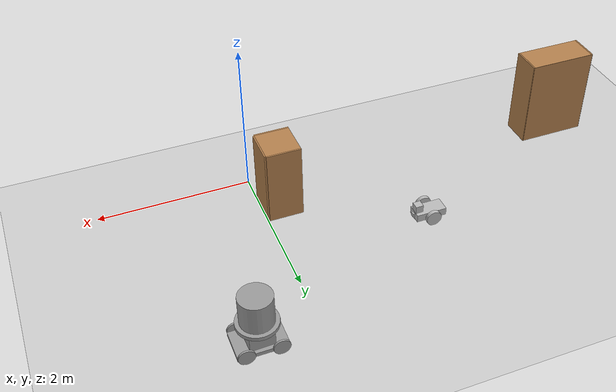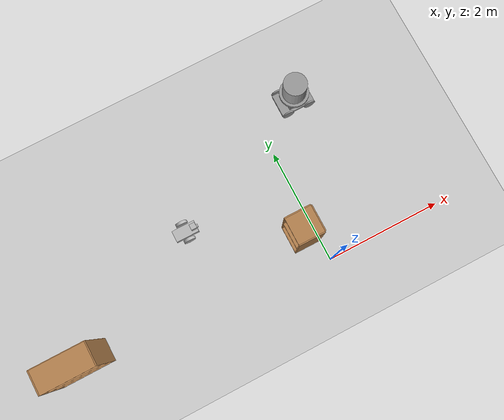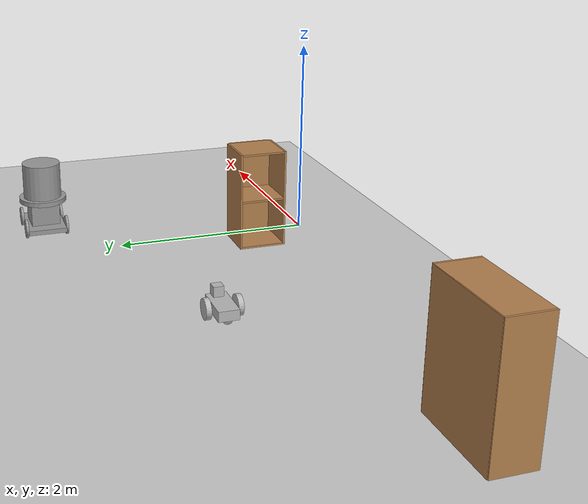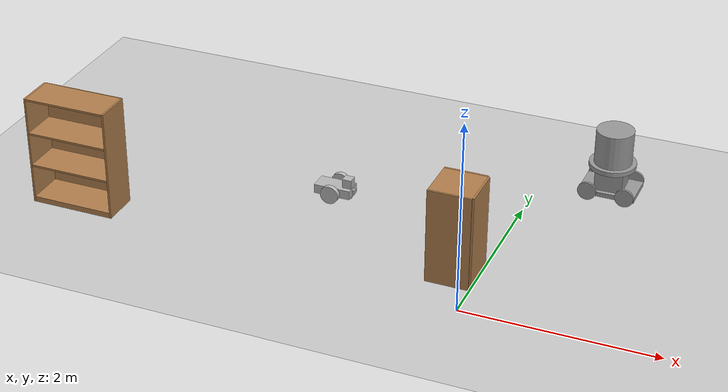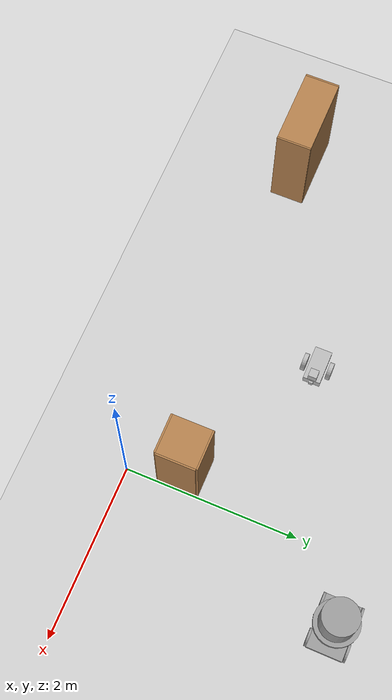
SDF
<sdf version="1.6">
 <world name="default">
  <model name="ground_plane">
   <static>1</static>
   <link name="link">
    <collision name="collision">
     <geometry><plane><normal>0 0 1</normal><size>100 100</size></plane></geometry>
     <surface>
      <contact><collide_bitmask>65535</collide_bitmask></contact>
      <friction><ode><mu>100</mu><mu2>50</mu2></ode></friction>
     </surface>
    </collision>
    <visual name="visual">
     <cast_shadows>0</cast_shadows>
     <geometry><plane><normal>0 0 1</normal><size>100 100</size></plane></geometry>
     <material>
      <script><uri>file://media/materials/scripts/gazebo.material</uri><name>Gazebo/Grey</name></script>
     </material>
    </visual>
   </link>
  </model>
  <model name="4x4_robot_0">
   <link name="link_0">
    <pose>-0 0 -0.02 0 -0 0</pose>
    <inertial>
     <mass>1</mass>
     <inertia>
      <ixx>0.166667</ixx>
      <ixy>0</ixy>
      <ixz>0</ixz>
      <iyy>0.166667</iyy>
      <iyz>0</iyz>
      <izz>0.166667</izz>
     </inertia>
    </inertial>
    <visual name="visual">
     <geometry><box><size>0.6 0.4 0.05</size></box></geometry>
     <material>
      <lighting>1</lighting>
      <script><uri>file://media/materials/scripts/gazebo.material</uri><name>Gazebo/Grey</name></script>
      <shader type="pixel"><normal_map>__default__</normal_map></shader>
      <ambient>0.3 0.3 0.3 1</ambient>
      <diffuse>0.7 0.7 0.7 1</diffuse>
      <specular>0.01 0.01 0.01 1</specular>
      <emissive>0 0 0 1</emissive>
     </material>
    </visual>
    <collision name="collision">
     <geometry><box><size>0.6 0.4 0.05</size></box></geometry>
     <surface>
      <friction>
       <ode><mu>1</mu><mu2>1</mu2><fdir1>0 0 0</fdir1><slip1>0</slip1><slip2>0</slip2></ode>
       <torsional>
        <coefficient>1</coefficient>
        <patch_radius>0</patch_radius>
        <surface_radius>0</surface_radius>
        <use_patch_radius>1</use_patch_radius>
        <ode><slip>0</slip></ode>
       </torsional>
      </friction>
      <bounce><restitution_coefficient>0</restitution_coefficient><threshold>1e+06</threshold></bounce>
      <contact>
       <collide_without_contact>0</collide_without_contact>
       <collide_without_contact_bitmask>1</collide_without_contact_bitmask>
       <collide_bitmask>1</collide_bitmask>
       <ode>
        <soft_cfm>0</soft_cfm>
        <soft_erp>0.2</soft_erp>
        <kp>1e+13</kp>
        <kd>1</kd>
        <max_vel>0.01</max_vel>
        <min_depth>0</min_depth>
       </ode>
       <bullet>
        <split_impulse>1</split_impulse>
        <split_impulse_penetration_threshold>-0.01</split_impulse_penetration_threshold>
        <soft_cfm>0</soft_cfm>
        <soft_erp>0.2</soft_erp>
        <kp>1e+13</kp>
        <kd>1</kd>
       </bullet>
      </contact>
     </surface>
    </collision>
   </link>
   <link name="link_0_0">
    <pose>9.4e-05 1e-06 0.104673 2.5e-05 0.001086 0.029379</pose>
    <inertial>
     <mass>1</mass>
     <inertia>
      <ixx>0.166667</ixx>
      <ixy>0</ixy>
      <ixz>0</ixz>
      <iyy>0.166667</iyy>
      <iyz>0</iyz>
      <izz>0.166667</izz>
     </inertia>
    </inertial>
    <visual name="visual">
     <geometry><box><size>0.3 0.3 0.3</size></box></geometry>
     <material>
      <lighting>1</lighting>
      <script><uri>file://media/materials/scripts/gazebo.material</uri><name>Gazebo/Grey</name></script>
      <shader type="pixel"><normal_map>__default__</normal_map></shader>
      <ambient>0.3 0.3 0.3 1</ambient>
      <diffuse>0.7 0.7 0.7 1</diffuse>
      <specular>0.01 0.01 0.01 1</specular>
      <emissive>0 0 0 1</emissive>
     </material>
    </visual>
    <collision name="collision">
     <geometry><box><size>0.3 0.3 0.3</size></box></geometry>
     <surface>
      <friction>
       <ode><mu>1</mu><mu2>1</mu2><fdir1>0 0 0</fdir1><slip1>0</slip1><slip2>0</slip2></ode>
       <torsional>
        <coefficient>1</coefficient>
        <patch_radius>0</patch_radius>
        <surface_radius>0</surface_radius>
        <use_patch_radius>1</use_patch_radius>
        <ode><slip>0</slip></ode>
       </torsional>
      </friction>
      <bounce><restitution_coefficient>0</restitution_coefficient><threshold>1e+06</threshold></bounce>
      <contact>
       <collide_without_contact>0</collide_without_contact>
       <collide_without_contact_bitmask>1</collide_without_contact_bitmask>
       <collide_bitmask>1</collide_bitmask>
       <ode>
        <soft_cfm>0</soft_cfm>
        <soft_erp>0.2</soft_erp>
        <kp>1e+13</kp>
        <kd>1</kd>
        <max_vel>0.01</max_vel>
        <min_depth>0</min_depth>
       </ode>
       <bullet>
        <split_impulse>1</split_impulse>
        <split_impulse_penetration_threshold>-0.01</split_impulse_penetration_threshold>
        <soft_cfm>0</soft_cfm>
        <soft_erp>0.2</soft_erp>
        <kp>1e+13</kp>
        <kd>1</kd>
       </bullet>
      </contact>
     </surface>
    </collision>
   </link>
   <link name="link_1">
    <pose>0.2 0.2125 0.005 1.5708 -0 0</pose>
    <inertial>
     <mass>1</mass>
     <inertia><ixx>0.145833</ixx><ixy>0</ixy><ixz>0</ixz><iyy>0.145833</iyy><iyz>0</iyz><izz>0.125</izz></inertia>
    </inertial>
    <visual name="visual">
     <geometry><cylinder><radius>0.1</radius><length>0.025</length></cylinder></geometry>
     <material>
      <lighting>1</lighting>
      <script><uri>file://media/materials/scripts/gazebo.material</uri><name>Gazebo/Grey</name></script>
      <shader type="pixel"><normal_map>__default__</normal_map></shader>
      <ambient>0.3 0.3 0.3 1</ambient>
      <diffuse>0.7 0.7 0.7 1</diffuse>
      <specular>0.01 0.01 0.01 1</specular>
      <emissive>0 0 0 1</emissive>
     </material>
    </visual>
    <collision name="collision">
     <geometry><cylinder><radius>0.1</radius><length>0.025</length></cylinder></geometry>
     <surface>
      <friction>
       <ode><mu>1</mu><mu2>1</mu2><fdir1>0 0 0</fdir1><slip1>0</slip1><slip2>0</slip2></ode>
       <torsional>
        <coefficient>1</coefficient>
        <patch_radius>0</patch_radius>
        <surface_radius>0</surface_radius>
        <use_patch_radius>1</use_patch_radius>
        <ode><slip>0</slip></ode>
       </torsional>
      </friction>
      <bounce><restitution_coefficient>0</restitution_coefficient><threshold>1e+06</threshold></bounce>
      <contact>
       <collide_without_contact>0</collide_without_contact>
       <collide_without_contact_bitmask>1</collide_without_contact_bitmask>
       <collide_bitmask>1</collide_bitmask>
       <ode>
        <soft_cfm>0</soft_cfm>
        <soft_erp>0.2</soft_erp>
        <kp>1e+13</kp>
        <kd>1</kd>
        <max_vel>0.01</max_vel>
        <min_depth>0</min_depth>
       </ode>
       <bullet>
        <split_impulse>1</split_impulse>
        <split_impulse_penetration_threshold>-0.01</split_impulse_penetration_threshold>
        <soft_cfm>0</soft_cfm>
        <soft_erp>0.2</soft_erp>
        <kp>1e+13</kp>
        <kd>1</kd>
       </bullet>
      </contact>
     </surface>
    </collision>
   </link>
   <link name="link_1_0">
    <pose>0.000268 2e-06 0.264673 2.5e-05 0.001086 0.029379</pose>
    <inertial>
     <mass>1</mass>
     <inertia><ixx>0.145833</ixx><ixy>0</ixy><ixz>0</ixz><iyy>0.145833</iyy><iyz>0</iyz><izz>0.125</izz></inertia>
    </inertial>
    <visual name="visual">
     <geometry><cylinder><radius>0.25</radius><length>0.05</length></cylinder></geometry>
     <material>
      <lighting>1</lighting>
      <script><uri>file://media/materials/scripts/gazebo.material</uri><name>Gazebo/Grey</name></script>
      <shader type="pixel"><normal_map>__default__</normal_map></shader>
      <ambient>0.3 0.3 0.3 1</ambient>
      <diffuse>0.7 0.7 0.7 1</diffuse>
      <specular>0.01 0.01 0.01 1</specular>
      <emissive>0 0 0 1</emissive>
     </material>
    </visual>
    <collision name="collision">
     <geometry><cylinder><radius>0.25</radius><length>0.05</length></cylinder></geometry>
     <surface>
      <friction>
       <ode><mu>1</mu><mu2>1</mu2><fdir1>0 0 0</fdir1><slip1>0</slip1><slip2>0</slip2></ode>
       <torsional>
        <coefficient>1</coefficient>
        <patch_radius>0</patch_radius>
        <surface_radius>0</surface_radius>
        <use_patch_radius>1</use_patch_radius>
        <ode><slip>0</slip></ode>
       </torsional>
      </friction>
      <bounce><restitution_coefficient>0</restitution_coefficient><threshold>1e+06</threshold></bounce>
      <contact>
       <collide_without_contact>0</collide_without_contact>
       <collide_without_contact_bitmask>1</collide_without_contact_bitmask>
       <collide_bitmask>1</collide_bitmask>
       <ode>
        <soft_cfm>0</soft_cfm>
        <soft_erp>0.2</soft_erp>
        <kp>1e+13</kp>
        <kd>1</kd>
        <max_vel>0.01</max_vel>
        <min_depth>0</min_depth>
       </ode>
       <bullet>
        <split_impulse>1</split_impulse>
        <split_impulse_penetration_threshold>-0.01</split_impulse_penetration_threshold>
        <soft_cfm>0</soft_cfm>
        <soft_erp>0.2</soft_erp>
        <kp>1e+13</kp>
        <kd>1</kd>
       </bullet>
      </contact>
     </surface>
    </collision>
   </link>
   <link name="link_1_clone">
    <pose>-0.2 -0.2125 0.005 1.5708 -0 0</pose>
    <inertial>
     <mass>1</mass>
     <inertia><ixx>0.145833</ixx><ixy>0</ixy><ixz>0</ixz><iyy>0.145833</iyy><iyz>0</iyz><izz>0.125</izz></inertia>
    </inertial>
    <visual name="visual">
     <geometry><cylinder><radius>0.1</radius><length>0.025</length></cylinder></geometry>
     <material>
      <lighting>1</lighting>
      <script><uri>file://media/materials/scripts/gazebo.material</uri><name>Gazebo/Grey</name></script>
      <shader type="pixel"><normal_map>__default__</normal_map></shader>
      <ambient>0.3 0.3 0.3 1</ambient>
      <diffuse>0.7 0.7 0.7 1</diffuse>
      <specular>0.01 0.01 0.01 1</specular>
      <emissive>0 0 0 1</emissive>
     </material>
    </visual>
    <collision name="collision">
     <geometry><cylinder><radius>0.1</radius><length>0.025</length></cylinder></geometry>
     <surface>
      <friction>
       <ode><mu>1</mu><mu2>1</mu2><fdir1>0 0 0</fdir1><slip1>0</slip1><slip2>0</slip2></ode>
       <torsional>
        <coefficient>1</coefficient>
        <patch_radius>0</patch_radius>
        <surface_radius>0</surface_radius>
        <use_patch_radius>1</use_patch_radius>
        <ode><slip>0</slip></ode>
       </torsional>
      </friction>
      <bounce><restitution_coefficient>0</restitution_coefficient><threshold>1e+06</threshold></bounce>
      <contact>
       <collide_without_contact>0</collide_without_contact>
       <collide_without_contact_bitmask>1</collide_without_contact_bitmask>
       <collide_bitmask>1</collide_bitmask>
       <ode>
        <soft_cfm>0</soft_cfm>
        <soft_erp>0.2</soft_erp>
        <kp>1e+13</kp>
        <kd>1</kd>
        <max_vel>0.01</max_vel>
        <min_depth>0</min_depth>
       </ode>
       <bullet>
        <split_impulse>1</split_impulse>
        <split_impulse_penetration_threshold>-0.01</split_impulse_penetration_threshold>
        <soft_cfm>0</soft_cfm>
        <soft_erp>0.2</soft_erp>
        <kp>1e+13</kp>
        <kd>1</kd>
       </bullet>
      </contact>
     </surface>
    </collision>
   </link>
   <link name="link_1_clone_0">
    <pose>-0.2 0.2125 0.005 1.5708 -0 0</pose>
    <inertial>
     <mass>1</mass>
     <inertia><ixx>0.145833</ixx><ixy>0</ixy><ixz>0</ixz><iyy>0.145833</iyy><iyz>0</iyz><izz>0.125</izz></inertia>
    </inertial>
    <visual name="visual">
     <geometry><cylinder><radius>0.1</radius><length>0.025</length></cylinder></geometry>
     <material>
      <lighting>1</lighting>
      <script><uri>file://media/materials/scripts/gazebo.material</uri><name>Gazebo/Grey</name></script>
      <shader type="pixel"><normal_map>__default__</normal_map></shader>
      <ambient>0.3 0.3 0.3 1</ambient>
      <diffuse>0.7 0.7 0.7 1</diffuse>
      <specular>0.01 0.01 0.01 1</specular>
      <emissive>0 0 0 1</emissive>
     </material>
    </visual>
    <collision name="collision">
     <geometry><cylinder><radius>0.1</radius><length>0.025</length></cylinder></geometry>
     <surface>
      <friction>
       <ode><mu>1</mu><mu2>1</mu2><fdir1>0 0 0</fdir1><slip1>0</slip1><slip2>0</slip2></ode>
       <torsional>
        <coefficient>1</coefficient>
        <patch_radius>0</patch_radius>
        <surface_radius>0</surface_radius>
        <use_patch_radius>1</use_patch_radius>
        <ode><slip>0</slip></ode>
       </torsional>
      </friction>
      <bounce><restitution_coefficient>0</restitution_coefficient><threshold>1e+06</threshold></bounce>
      <contact>
       <collide_without_contact>0</collide_without_contact>
       <collide_without_contact_bitmask>1</collide_without_contact_bitmask>
       <collide_bitmask>1</collide_bitmask>
       <ode>
        <soft_cfm>0</soft_cfm>
        <soft_erp>0.2</soft_erp>
        <kp>1e+13</kp>
        <kd>1</kd>
        <max_vel>0.01</max_vel>
        <min_depth>0</min_depth>
       </ode>
       <bullet>
        <split_impulse>1</split_impulse>
        <split_impulse_penetration_threshold>-0.01</split_impulse_penetration_threshold>
        <soft_cfm>0</soft_cfm>
        <soft_erp>0.2</soft_erp>
        <kp>1e+13</kp>
        <kd>1</kd>
       </bullet>
      </contact>
     </surface>
    </collision>
   </link>
   <link name="link_1_clone_1">
    <pose>0.2 -0.2125 0.005 1.5708 -0 0</pose>
    <inertial>
     <mass>1</mass>
     <inertia><ixx>0.145833</ixx><ixy>0</ixy><ixz>0</ixz><iyy>0.145833</iyy><iyz>0</iyz><izz>0.125</izz></inertia>
    </inertial>
    <visual name="visual">
     <geometry><cylinder><radius>0.1</radius><length>0.025</length></cylinder></geometry>
     <material>
      <lighting>1</lighting>
      <script><uri>file://media/materials/scripts/gazebo.material</uri><name>Gazebo/Grey</name></script>
      <shader type="pixel"><normal_map>__default__</normal_map></shader>
      <ambient>0.3 0.3 0.3 1</ambient>
      <diffuse>0.7 0.7 0.7 1</diffuse>
      <specular>0.01 0.01 0.01 1</specular>
      <emissive>0 0 0 1</emissive>
     </material>
    </visual>
    <collision name="collision">
     <geometry><cylinder><radius>0.1</radius><length>0.025</length></cylinder></geometry>
     <surface>
      <friction>
       <ode><mu>1</mu><mu2>1</mu2><fdir1>0 0 0</fdir1><slip1>0</slip1><slip2>0</slip2></ode>
       <torsional>
        <coefficient>1</coefficient>
        <patch_radius>0</patch_radius>
        <surface_radius>0</surface_radius>
        <use_patch_radius>1</use_patch_radius>
        <ode><slip>0</slip></ode>
       </torsional>
      </friction>
      <bounce><restitution_coefficient>0</restitution_coefficient><threshold>1e+06</threshold></bounce>
      <contact>
       <collide_without_contact>0</collide_without_contact>
       <collide_without_contact_bitmask>1</collide_without_contact_bitmask>
       <collide_bitmask>1</collide_bitmask>
       <ode>
        <soft_cfm>0</soft_cfm>
        <soft_erp>0.2</soft_erp>
        <kp>1e+13</kp>
        <kd>1</kd>
        <max_vel>0.01</max_vel>
        <min_depth>0</min_depth>
       </ode>
       <bullet>
        <split_impulse>1</split_impulse>
        <split_impulse_penetration_threshold>-0.01</split_impulse_penetration_threshold>
        <soft_cfm>0</soft_cfm>
        <soft_erp>0.2</soft_erp>
        <kp>1e+13</kp>
        <kd>1</kd>
       </bullet>
      </contact>
     </surface>
    </collision>
   </link>
   <link name="link_2">
    <pose>0.000485 4e-06 0.464673 2.5e-05 0.001086 0.029379</pose>
    <inertial>
     <mass>1</mass>
     <inertia><ixx>0.145833</ixx><ixy>0</ixy><ixz>0</ixz><iyy>0.145833</iyy><iyz>0</iyz><izz>0.125</izz></inertia>
    </inertial>
    <visual name="visual">
     <geometry><cylinder><radius>0.2</radius><length>0.4</length></cylinder></geometry>
     <material>
      <lighting>1</lighting>
      <script><uri>file://media/materials/scripts/gazebo.material</uri><name>Gazebo/Grey</name></script>
      <shader type="pixel"><normal_map>__default__</normal_map></shader>
      <ambient>0.3 0.3 0.3 1</ambient>
      <diffuse>0.7 0.7 0.7 1</diffuse>
      <specular>0.01 0.01 0.01 1</specular>
      <emissive>0 0 0 1</emissive>
     </material>
    </visual>
    <collision name="collision">
     <geometry><cylinder><radius>0.2</radius><length>0.4</length></cylinder></geometry>
     <surface>
      <friction>
       <ode><mu>1</mu><mu2>1</mu2><fdir1>0 0 0</fdir1><slip1>0</slip1><slip2>0</slip2></ode>
       <torsional>
        <coefficient>1</coefficient>
        <patch_radius>0</patch_radius>
        <surface_radius>0</surface_radius>
        <use_patch_radius>1</use_patch_radius>
        <ode><slip>0</slip></ode>
       </torsional>
      </friction>
      <bounce><restitution_coefficient>0</restitution_coefficient><threshold>1e+06</threshold></bounce>
      <contact>
       <collide_without_contact>0</collide_without_contact>
       <collide_without_contact_bitmask>1</collide_without_contact_bitmask>
       <collide_bitmask>1</collide_bitmask>
       <ode>
        <soft_cfm>0</soft_cfm>
        <soft_erp>0.2</soft_erp>
        <kp>1e+13</kp>
        <kd>1</kd>
        <max_vel>0.01</max_vel>
        <min_depth>0</min_depth>
       </ode>
       <bullet>
        <split_impulse>1</split_impulse>
        <split_impulse_penetration_threshold>-0.01</split_impulse_penetration_threshold>
        <soft_cfm>0</soft_cfm>
        <soft_erp>0.2</soft_erp>
        <kp>1e+13</kp>
        <kd>1</kd>
       </bullet>
      </contact>
     </surface>
    </collision>
   </link>
   <joint name="link_0_0_JOINT_1" type="fixed">
    <parent>link_0_0</parent>
    <child>link_1_0</child>
    <physics>
     <ode><limit><cfm>0</cfm><erp>0.2</erp></limit><suspension><cfm>0</cfm><erp>0.2</erp></suspension></ode>
    </physics>
   </joint>
   <joint name="link_0_JOINT_0_0" type="fixed">
    <parent>link_0</parent>
    <child>link_0_0</child>
    <physics>
     <ode><limit><cfm>0</cfm><erp>0.2</erp></limit><suspension><cfm>0</cfm><erp>0.2</erp></suspension></ode>
    </physics>
   </joint>
   <joint name="link_0_JOINT_0" type="revolute">
    <parent>link_0</parent>
    <child>link_1_clone</child>
    <axis>
     <xyz>0 0 1</xyz>
     <use_parent_model_frame>0</use_parent_model_frame>
     <limit>
      <lower>-1.79769e+308</lower>
      <upper>1.79769e+308</upper>
      <effort>-1</effort>
      <velocity>-1</velocity>
     </limit>
     <dynamics>
      <spring_reference>0</spring_reference>
      <spring_stiffness>0</spring_stiffness>
      <damping>0</damping>
      <friction>0</friction>
     </dynamics>
    </axis>
    <physics>
     <ode><limit><cfm>0</cfm><erp>0.2</erp></limit><suspension><cfm>0</cfm><erp>0.2</erp></suspension></ode>
    </physics>
   </joint>
   <joint name="link_0_JOINT_1" type="revolute">
    <parent>link_0</parent>
    <child>link_1_clone_1</child>
    <axis>
     <xyz>0 0 1</xyz>
     <use_parent_model_frame>0</use_parent_model_frame>
     <limit>
      <lower>-1.79769e+308</lower>
      <upper>1.79769e+308</upper>
      <effort>-1</effort>
      <velocity>-1</velocity>
     </limit>
     <dynamics>
      <spring_reference>0</spring_reference>
      <spring_stiffness>0</spring_stiffness>
      <damping>0</damping>
      <friction>0</friction>
     </dynamics>
    </axis>
    <physics>
     <ode><limit><cfm>0</cfm><erp>0.2</erp></limit><suspension><cfm>0</cfm><erp>0.2</erp></suspension></ode>
    </physics>
   </joint>
   <joint name="link_0_JOINT_2" type="revolute">
    <parent>link_0</parent>
    <child>link_1_clone_0</child>
    <axis>
     <xyz>0 0 1</xyz>
     <use_parent_model_frame>0</use_parent_model_frame>
     <limit>
      <lower>-1.79769e+308</lower>
      <upper>1.79769e+308</upper>
      <effort>-1</effort>
      <velocity>-1</velocity>
     </limit>
     <dynamics>
      <spring_reference>0</spring_reference>
      <spring_stiffness>0</spring_stiffness>
      <damping>0</damping>
      <friction>0</friction>
     </dynamics>
    </axis>
    <physics>
     <ode><limit><cfm>0</cfm><erp>0.2</erp></limit><suspension><cfm>0</cfm><erp>0.2</erp></suspension></ode>
    </physics>
   </joint>
   <joint name="link_0_JOINT_7" type="revolute">
    <parent>link_0</parent>
    <child>link_1</child>
    <pose>0 0 0 0 -0.21 0</pose>
    <axis>
     <xyz>0 0 1</xyz>
     <use_parent_model_frame>0</use_parent_model_frame>
     <limit>
      <lower>-1.79769e+308</lower>
      <upper>1.79769e+308</upper>
      <effort>-1</effort>
      <velocity>-1</velocity>
     </limit>
     <dynamics>
      <spring_reference>0</spring_reference>
      <spring_stiffness>0</spring_stiffness>
      <damping>0</damping>
      <friction>0</friction>
     </dynamics>
    </axis>
    <physics>
     <ode><limit><cfm>0</cfm><erp>0.2</erp></limit><suspension><cfm>0</cfm><erp>0.2</erp></suspension></ode>
    </physics>
   </joint>
   <joint name="link_1_0_JOINT_2" type="revolute">
    <parent>link_1_0</parent>
    <child>link_2</child>
    <axis>
     <xyz>1 0 0</xyz>
     <use_parent_model_frame>0</use_parent_model_frame>
     <limit>
      <lower>-1.79769e+308</lower>
      <upper>1.79769e+308</upper>
      <effort>-1</effort>
      <velocity>-1</velocity>
     </limit>
     <dynamics>
      <spring_reference>0</spring_reference>
      <spring_stiffness>0</spring_stiffness>
      <damping>0</damping>
     </dynamics>
    </axis>
    <physics>
     <ode><limit><cfm>0</cfm><erp>0.2</erp></limit><suspension><cfm>0</cfm><erp>0.2</erp></suspension></ode>
    </physics>
   </joint>
   <static>0</static>
   <pose>0.74184 2.69569 0.095 0 0 -0.004713</pose>
  </model>
  <model name="bookshelf">
   <static>1</static>
   <link name="link">
    <inertial><mass>1</mass></inertial>
    <collision name="back">
     <pose>0 0.005 0.6 0 -0 0</pose>
     <geometry><box><size>0.9 0.01 1.2</size></box></geometry>
    </collision>
    <visual name="visual1">
     <pose>0 0.005 0.6 0 -0 0</pose>
     <geometry><box><size>0.9 0.01 1.2</size></box></geometry>
     <material>
      <script><uri>file://media/materials/scripts/gazebo.material</uri><name>Gazebo/Wood</name></script>
     </material>
    </visual>
    <collision name="left_side">
     <pose>0.45 -0.195 0.6 0 -0 0</pose>
     <geometry><box><size>0.02 0.4 1.2</size></box></geometry>
    </collision>
    <visual name="visual2">
     <pose>0.45 -0.195 0.6 0 -0 0</pose>
     <geometry><box><size>0.02 0.4 1.2</size></box></geometry>
     <material>
      <script><uri>file://media/materials/scripts/gazebo.material</uri><name>Gazebo/Wood</name></script>
     </material>
    </visual>
    <collision name="right_side">
     <pose>-0.45 -0.195 0.6 0 -0 0</pose>
     <geometry><box><size>0.02 0.4 1.2</size></box></geometry>
    </collision>
    <visual name="visual3">
     <pose>-0.45 -0.195 0.6 0 -0 0</pose>
     <geometry><box><size>0.02 0.4 1.2</size></box></geometry>
     <material>
      <script><uri>file://media/materials/scripts/gazebo.material</uri><name>Gazebo/Wood</name></script>
     </material>
    </visual>
    <collision name="bottom">
     <pose>0 -0.195 0.03 0 -0 0</pose>
     <geometry><box><size>0.88 0.4 0.06</size></box></geometry>
    </collision>
    <visual name="visual4">
     <pose>0 -0.195 0.03 0 -0 0</pose>
     <geometry><box><size>0.88 0.4 0.06</size></box></geometry>
     <material>
      <script><uri>file://media/materials/scripts/gazebo.material</uri><name>Gazebo/Wood</name></script>
     </material>
    </visual>
    <collision name="top">
     <pose>0 -0.195 1.19 0 -0 0</pose>
     <geometry><box><size>0.88 0.4 0.02</size></box></geometry>
    </collision>
    <visual name="visual5">
     <pose>0 -0.195 1.19 0 -0 0</pose>
     <geometry><box><size>0.88 0.4 0.02</size></box></geometry>
     <material>
      <script><uri>file://media/materials/scripts/gazebo.material</uri><name>Gazebo/Wood</name></script>
     </material>
    </visual>
    <collision name="low_shelf">
     <pose>0 -0.195 0.43 0 -0 0</pose>
     <geometry><box><size>0.88 0.4 0.02</size></box></geometry>
    </collision>
    <visual name="visual6">
     <pose>0 -0.195 0.43 0 -0 0</pose>
     <geometry><box><size>0.88 0.4 0.02</size></box></geometry>
     <material>
      <script><uri>file://media/materials/scripts/gazebo.material</uri><name>Gazebo/Wood</name></script>
     </material>
    </visual>
    <collision name="high_shelf">
     <pose>0 -0.195 0.8 0 -0 0</pose>
     <geometry><box><size>0.88 0.4 0.02</size></box></geometry>
    </collision>
    <visual name="visual7">
     <pose>0 -0.195 0.8 0 -0 0</pose>
     <geometry><box><size>0.88 0.4 0.02</size></box></geometry>
     <material>
      <script><uri>file://media/materials/scripts/gazebo.material</uri><name>Gazebo/Wood</name></script>
     </material>
    </visual>
   </link>
   <pose>-4.30852 0.576273 0 0 -0 0</pose>
  </model>
  <model name="cabinet">
   <static>1</static>
   <link name="cabinet_bottom_plate">
    <inertial>
     <pose>0 0 -1 0 -0 0</pose>
     <inertia><ixx>2.05</ixx><ixy>0</ixy><ixz>0</ixz><iyy>2.05</iyy><iyz>0</iyz><izz>2.05</izz></inertia>
     <mass>25</mass>
    </inertial>
    <collision name="cabinet_bottom_plate_geom">
     <pose>0 0 0.01 0 -0 0</pose>
     <geometry><box><size>0.45 0.45 0.02</size></box></geometry>
    </collision>
    <visual name="cabinet_bottom_plate_geom_visual">
     <pose>0 0 0.01 0 -0 0</pose>
     <geometry><box><size>0.45 0.45 0.02</size></box></geometry>
     <material>
      <script><uri>file://media/materials/scripts/gazebo.material</uri><name>Gazebo/Wood</name></script>
     </material>
    </visual>
    <collision name="cabinet_bottom_plate_geom_cabinet_back_plate">
     <pose>0.235 0 0.51 0 -0 0</pose>
     <geometry><box><size>0.02 0.45 1.02</size></box></geometry>
    </collision>
    <visual name="cabinet_bottom_plate_geom_cabinet_back_plate_visual">
     <pose>0.235 0 0.51 0 -0 0</pose>
     <geometry><box><size>0.02 0.45 1.02</size></box></geometry>
     <material>
      <script><uri>file://media/materials/scripts/gazebo.material</uri><name>Gazebo/Wood</name></script>
     </material>
    </visual>
    <collision name="cabinet_bottom_plate_geom_cabinet_left_plate">
     <pose>0 0.235 0.51 0 -0 0</pose>
     <geometry><box><size>0.45 0.02 1.02</size></box></geometry>
    </collision>
    <visual name="cabinet_bottom_plate_geom_cabinet_left_plate_visual">
     <pose>0 0.235 0.51 0 -0 0</pose>
     <geometry><box><size>0.45 0.02 1.02</size></box></geometry>
     <material>
      <script><uri>file://media/materials/scripts/gazebo.material</uri><name>Gazebo/Wood</name></script>
     </material>
    </visual>
    <collision name="cabinet_bottom_plate_geom_cabinet_middle_plate">
     <pose>0 0 0.51 0 -0 0</pose>
     <geometry><box><size>0.45 0.45 0.02</size></box></geometry>
    </collision>
    <visual name="cabinet_bottom_plate_geom_cabinet_middle_plate_visual">
     <pose>0 0 0.51 0 -0 0</pose>
     <geometry><box><size>0.45 0.45 0.02</size></box></geometry>
     <material>
      <script><uri>file://media/materials/scripts/gazebo.material</uri><name>Gazebo/Wood</name></script>
     </material>
    </visual>
    <collision name="cabinet_bottom_plate_geom_cabinet_right_plate">
     <pose>0 -0.235 0.51 0 -0 0</pose>
     <geometry><box><size>0.45 0.02 1.02</size></box></geometry>
    </collision>
    <visual name="cabinet_bottom_plate_geom_cabinet_right_plate_visual">
     <pose>0 -0.235 0.51 0 -0 0</pose>
     <geometry><box><size>0.45 0.02 1.02</size></box></geometry>
     <material>
      <script><uri>file://media/materials/scripts/gazebo.material</uri><name>Gazebo/Wood</name></script>
     </material>
    </visual>
    <collision name="cabinet_bottom_plate_geom_cabinet_top_plate">
     <pose>0 0 1.01 0 -0 0</pose>
     <geometry><box><size>0.45 0.45 0.02</size></box></geometry>
    </collision>
    <visual name="cabinet_bottom_plate_geom_cabinet_top_plate_visual">
     <pose>0 0 1.01 0 -0 0</pose>
     <geometry><box><size>0.45 0.45 0.02</size></box></geometry>
     <material>
      <script><uri>file://media/materials/scripts/gazebo.material</uri><name>Gazebo/Wood</name></script>
     </material>
    </visual>
   </link>
   <pose>-0.242897 0.598082 0 0 -0 0</pose>
  </model>
  <model name="my_robot">
   <link name="robot_footprint">
    <inertial>
     <pose>0.001325 0 0 0 -0 0</pose>
     <mass>15.1</mass>
     <inertia>
      <ixx>0.100002</ixx>
      <ixy>0</ixy>
      <ixz>-1.48675e-07</ixz>
      <iyy>0.103976</iyy>
      <iyz>0</iyz>
      <izz>0.103976</izz>
     </inertia>
    </inertial>
    <collision name="robot_footprint_fixed_joint_lump__collision_collision">
     <geometry><box><size>0.4 0.2 0.1</size></box></geometry>
    </collision>
    <collision name="robot_footprint_fixed_joint_lump__back_caster_collision_collision_1">
     <pose>-0.15 0 -0.05 0 -0 0</pose>
     <geometry><sphere><radius>0.0499</radius></sphere></geometry>
    </collision>
    <collision name="robot_footprint_fixed_joint_lump__front_caster_collision_collision_2">
     <pose>0.15 0 -0.05 0 -0 0</pose>
     <geometry><sphere><radius>0.0499</radius></sphere></geometry>
    </collision>
    <collision name="robot_footprint_fixed_joint_lump__camera_collision_collision_3">
     <pose>0.2 0 0 0 -0 0</pose>
     <geometry><box><size>0.05 0.05 0.05</size></box></geometry>
    </collision>
    <collision name="robot_footprint_fixed_joint_lump__hokuyo_collision_collision_4">
     <pose>0.15 0 0.1 0 -0 0</pose>
     <geometry><box><size>0.1 0.1 0.1</size></box></geometry>
    </collision>
    <visual name="robot_footprint_fixed_joint_lump__chassis_visual_visual">
     <geometry><box><size>0.4 0.2 0.1</size></box></geometry>
    </visual>
    <visual name="robot_footprint_fixed_joint_lump__back_caster_visual_visual_1">
     <pose>-0.15 0 -0.05 0 -0 0</pose>
     <geometry><sphere><radius>0.05</radius></sphere></geometry>
    </visual>
    <visual name="robot_footprint_fixed_joint_lump__front_caster_visual_visual_2">
     <pose>0.15 0 -0.05 0 -0 0</pose>
     <geometry><sphere><radius>0.05</radius></sphere></geometry>
    </visual>
    <visual name="robot_footprint_fixed_joint_lump__camera_visual_visual_3">
     <pose>0.2 0 0 0 -0 0</pose>
     <geometry><box><size>0.05 0.05 0.05</size></box></geometry>
     <material><script><uri>__default__</uri><name>__default__</name></script></material>
    </visual>
    <visual name="robot_footprint_fixed_joint_lump__hokuyo_visual_visual_4">
     <pose>0.15 0 0.1 0 -0 0</pose>
     <geometry><box><size>0.1 0.1 0.1</size></box></geometry>
     <material><script><uri>__default__</uri><name>__default__</name></script></material>
    </visual>
    <sensor name="camera1" type="camera">
     <update_rate>30</update_rate>
     <camera name="head">
      <horizontal_fov>1.39626</horizontal_fov>
      <image><width>800</width><height>800</height><format>R8G8B8</format></image>
      <clip><near>0.02</near><far>300</far></clip>
     </camera>
     <plugin name="camera_controller" filename="libgazebo_ros_camera.so">
      <alwaysOn>true</alwaysOn>
      <updateRate>0.0</updateRate>
      <cameraName>camera</cameraName>
      <imageTopicName>rgb/image_raw</imageTopicName>
      <cameraInfoTopicName>rgb/camera_info</cameraInfoTopicName>
      <frameName>camera</frameName>
      <hackBaseline>0.07</hackBaseline>
      <distortionK1>0.0</distortionK1>
      <distortionK2>0.0</distortionK2>
      <distortionK3>0.0</distortionK3>
      <distortionT1>0.0</distortionT1>
      <distortionT2>0.0</distortionT2>
      <robotNamespace>/</robotNamespace>
     </plugin>
     <pose>0.2 0 0 0 -0 0</pose>
    </sensor>
    <sensor name="head_hokuyo_sensor" type="ray">
     <visualize>0</visualize>
     <update_rate>40</update_rate>
     <ray>
      <scan>
       <horizontal>
        <samples>720</samples>
        <resolution>1</resolution>
        <min_angle>-1.5708</min_angle>
        <max_angle>1.5708</max_angle>
       </horizontal>
       <vertical><samples>1</samples><min_angle>0</min_angle><max_angle>0</max_angle></vertical>
      </scan>
      <range><min>0.1</min><max>30</max><resolution>0.01</resolution></range>
      <noise><type>gaussian</type><mean>0</mean><stddev>0.01</stddev></noise>
     </ray>
     <plugin name="gazebo_ros_head_hokuyo_controller" filename="libgazebo_ros_laser.so">
      <topicName>/scan</topicName>
      <frameName>hokuyo</frameName>
      <robotNamespace>/</robotNamespace>
     </plugin>
     <pose>0.15 0 0.1 0 -0 0</pose>
    </sensor>
   </link>
   <link name="left_wheel">
    <pose>0 0.15 0 0 -0 0</pose>
    <inertial>
     <pose>0 0 0 3.14159 1.57079 -1.57079</pose>
     <mass>5</mass>
     <inertia><ixx>0.1</ixx><ixy>0</ixy><ixz>0</ixz><iyy>0.1</iyy><iyz>0</iyz><izz>0.1</izz></inertia>
    </inertial>
    <collision name="left_wheel_collision_collision">
     <pose>0 0 0 3.14159 1.57079 -1.57079</pose>
     <geometry><cylinder><length>0.05</length><radius>0.1</radius></cylinder></geometry>
    </collision>
    <visual name="left_wheel_visual_visual">
     <pose>0 0 0 3.14159 1.57079 -1.57079</pose>
     <geometry><cylinder><length>0.05</length><radius>0.1</radius></cylinder></geometry>
    </visual>
   </link>
   <joint name="left_wheel_hinge" type="revolute">
    <child>left_wheel</child>
    <parent>robot_footprint</parent>
    <axis>
     <xyz>0 1 0</xyz>
     <limit><lower>-1e+16</lower><upper>1e+16</upper></limit>
     <dynamics>
      <damping>1</damping>
      <friction>1</friction>
      <spring_reference>0</spring_reference>
      <spring_stiffness>0</spring_stiffness>
     </dynamics>
     <use_parent_model_frame>1</use_parent_model_frame>
    </axis>
   </joint>
   <link name="right_wheel">
    <pose>0 -0.15 0 0 -0 0</pose>
    <inertial>
     <pose>0 0 0 3.14159 1.57079 -1.57079</pose>
     <mass>5</mass>
     <inertia><ixx>0.1</ixx><ixy>0</ixy><ixz>0</ixz><iyy>0.1</iyy><iyz>0</iyz><izz>0.1</izz></inertia>
    </inertial>
    <collision name="right_wheel_collision_collision">
     <pose>0 0 0 3.14159 1.57079 -1.57079</pose>
     <geometry><cylinder><length>0.05</length><radius>0.1</radius></cylinder></geometry>
    </collision>
    <visual name="right_wheel_visual_visual">
     <pose>0 0 0 3.14159 1.57079 -1.57079</pose>
     <geometry><cylinder><length>0.05</length><radius>0.1</radius></cylinder></geometry>
    </visual>
   </link>
   <joint name="right_wheel_hinge" type="revolute">
    <child>right_wheel</child>
    <parent>robot_footprint</parent>
    <axis>
     <xyz>0 1 0</xyz>
     <limit><lower>-1e+16</lower><upper>1e+16</upper></limit>
     <dynamics>
      <damping>1</damping>
      <friction>1</friction>
      <spring_reference>0</spring_reference>
      <spring_stiffness>0</spring_stiffness>
     </dynamics>
     <use_parent_model_frame>1</use_parent_model_frame>
    </axis>
   </joint>
   <static>0</static>
   <plugin name="differential_drive_controller" filename="libgazebo_ros_diff_drive.so">
    <legacyMode>false</legacyMode>
    <alwaysOn>true</alwaysOn>
    <updateRate>10</updateRate>
    <leftJoint>left_wheel_hinge</leftJoint>
    <rightJoint>right_wheel_hinge</rightJoint>
    <wheelSeparation>0.4</wheelSeparation>
    <wheelDiameter>0.2</wheelDiameter>
    <torque>10</torque>
    <commandTopic>cmd_vel</commandTopic>
    <odometryTopic>odom</odometryTopic>
    <odometryFrame>odom</odometryFrame>
    <robotBaseFrame>robot_footprint</robotBaseFrame>
    <publishWheelTF>false</publishWheelTF>
    <publishWheelJointState>false</publishWheelJointState>
    <rosDebugLevel>na</rosDebugLevel>
    <wheelAcceleration>0</wheelAcceleration>
    <wheelTorque>5</wheelTorque>
    <odometrySource>world</odometrySource>
    <publishTf>1</publishTf>
    <publishOdomTF>true</publishOdomTF>
    <robotNamespace>/</robotNamespace>
   </plugin>
   <pose>-1.90527 1.50878 0.099993 -4e-06 0.000581 0.000256</pose>
  </model>
 </world>
</sdf>
